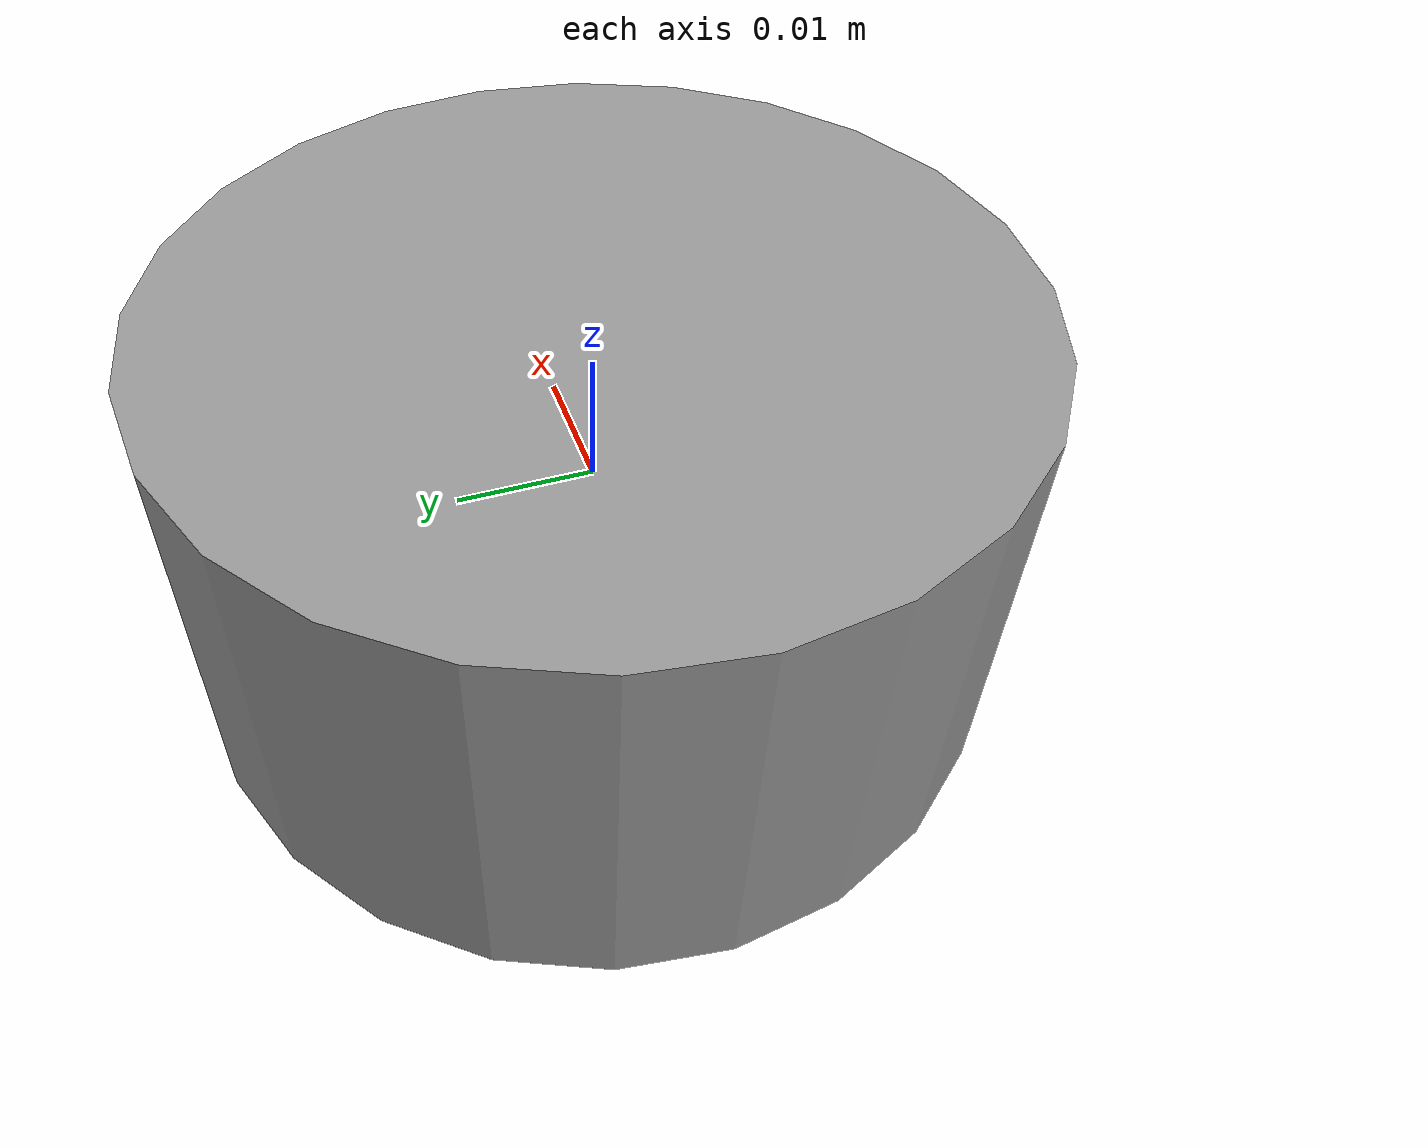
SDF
<?xml version='1.0'?>
<sdf version='1.7'>
  <model name='mid360'>
    <link name='link_0'>
      <inertial>
        <mass>0.2</mass>
        <inertia>
          <ixx>0.01</ixx>
          <ixy>0</ixy>
          <ixz>0</ixz>
          <iyy>0.01</iyy>
          <iyz>0</iyz>
          <izz>0.01</izz>
        </inertia>
        <pose>0 0 0 0 -0 0</pose>
      </inertial>
      <pose>-0 -0 0 0 -0 0</pose>
      <gravity>0</gravity>
      <self_collide>0</self_collide>
      <kinematic>0</kinematic>
      <enable_wind>0</enable_wind>
      <visual name='visual'>
        <pose>0 0 0 0 -0 0</pose>
        <geometry>
          <cylinder>
            <radius>0.03</radius>
            <length>0.03</length>
          </cylinder>
        </geometry>
        <material>
          <lighting>1</lighting>
          <script>
            <uri>file://media/materials/scripts/gazebo.material</uri>
            <name>Gazebo/Grey</name>
          </script>
          <shader type='pixel'>
            <normal_map>__default__</normal_map>
          </shader>
          <ambient>0.3 0.3 0.3 1</ambient>
          <diffuse>0.7 0.7 0.7 1</diffuse>
          <specular>0.01 0.01 0.01 1</specular>
          <emissive>0 0 0 1</emissive>
        </material>
        <transparency>0</transparency>
        <cast_shadows>1</cast_shadows>
      </visual>
      <collision name='collision'>
        <laser_retro>0</laser_retro>
        <max_contacts>10</max_contacts>
        <pose>0 0 0 0 0 0</pose>
        <geometry>
          <cylinder>
            <radius>0.03</radius>
            <length>0.03</length>
          </cylinder>
        </geometry>
        <surface>
          <friction>
            <ode>
              <mu>1</mu>
              <mu2>1</mu2>
              <fdir1>0 0 0</fdir1>
              <slip1>0</slip1>
              <slip2>0</slip2>
            </ode>
            <torsional>
              <coefficient>1</coefficient>
              <patch_radius>0</patch_radius>
              <surface_radius>0</surface_radius>
              <use_patch_radius>1</use_patch_radius>
              <ode>
                <slip>0</slip>
              </ode>
            </torsional>
          </friction>
          <bounce>
            <restitution_coefficient>0</restitution_coefficient>
            <threshold>1e+06</threshold>
          </bounce>
          <contact>
            <collide_without_contact>0</collide_without_contact>
            <collide_without_contact_bitmask>1</collide_without_contact_bitmask>
            <collide_bitmask>1</collide_bitmask>
            <ode>
              <soft_cfm>0</soft_cfm>
              <soft_erp>0.2</soft_erp>
              <kp>1e+13</kp>
              <kd>1</kd>
              <max_vel>0.01</max_vel>
              <min_depth>0</min_depth>
            </ode>
            <bullet>
              <split_impulse>1</split_impulse>
              <split_impulse_penetration_threshold>-0.01</split_impulse_penetration_threshold>
              <soft_cfm>0</soft_cfm>
              <soft_erp>0.2</soft_erp>
              <kp>1e+13</kp>
              <kd>1</kd>
            </bullet>
          </contact>
        </surface>
      </collision>
      <sensor type="ray" name="mid360">
        <pose>0 0 0 0 0 0</pose>
        <visualize>True</visualize>
        <update_rate>10</update_rate>
        <plugin name="gazebo_ros_laser_controller" filename="liblivox_laser_simulation.so">
			    <ray>
			      <scan>
			       <horizontal>
			    	    <samples>100</samples>
			    	    <resolution>1</resolution>
			    	    <min_angle>0</min_angle>
			    	    <max_angle>2*3.14159</max_angle>
			    	  </horizontal>
			    	  <vertical>
			    	    <samples>360</samples>
			    	    <resolution>1</resolution>
			    	    <min_angle>-7.22/180*3.14159</min_angle>
			    	    <max_angle>55.22/180*3.14159</max_angle>
			    	  </vertical>
				</scan>
			        <range>
			    	    <min>0.2</min>
			    	    <max>40</max>
			    	    <resolution>0.002</resolution>
			        </range>
			        <noise>
			    	    <type>gaussian</type>
			    	    <mean>0</mean>
			    	    <stddev>0.01</stddev>
			        </noise>
			    </ray>
          <visualize>True</visualize>
		      <samples>24000</samples>
		      <downsample>4</downsample>
		      <csv_file_name>/home/host/ius_uav/ros_ws/src/px4_sim/mid360_scan_mode/mid360.csv</csv_file_name>
		      <ros_topic>mid360_scan</ros_topic>
        </plugin>
      </sensor>
    </link>
    <static>1</static>
    <allow_auto_disable>0</allow_auto_disable>
  </model>
</sdf>
